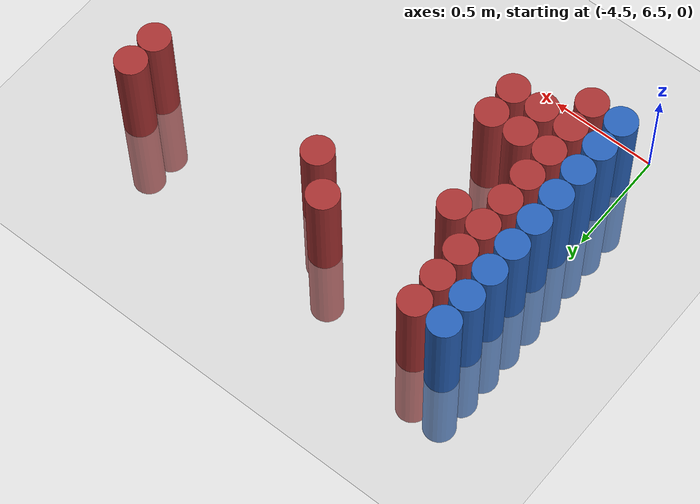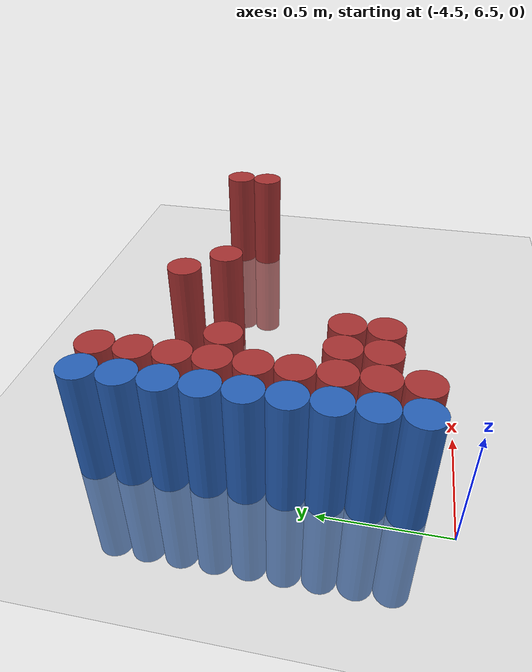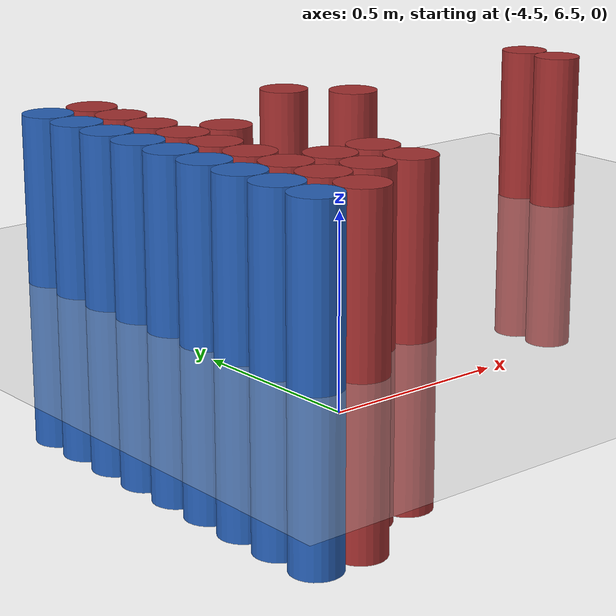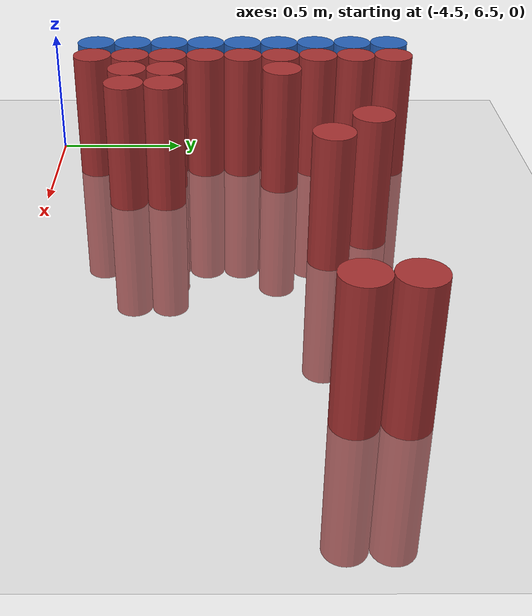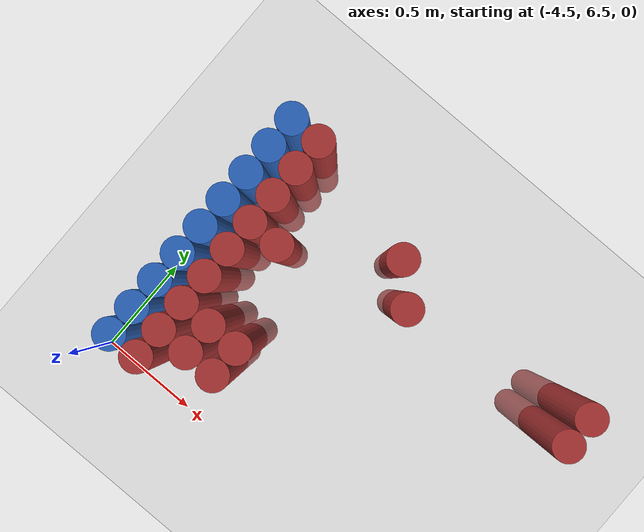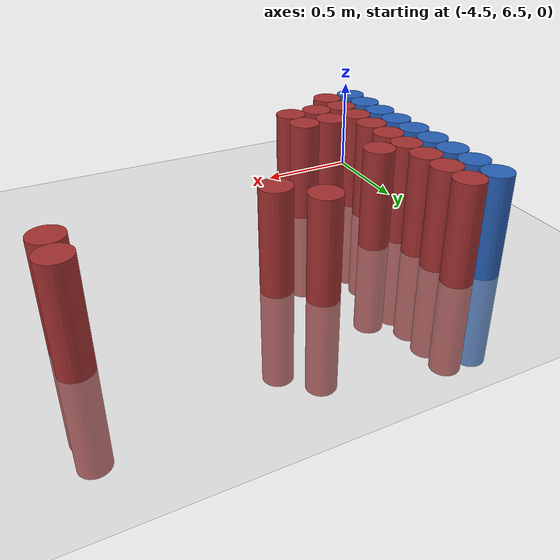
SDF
<sdf version="1.6">
 <world name="default">
  <model name="ground_plane">
   <static>1</static>
   <link name="link">
    <collision name="collision">
     <geometry><plane><normal>0 0 1</normal><size>100 100</size></plane></geometry>
     <surface><friction><ode><mu>100</mu><mu2>50</mu2></ode></friction></surface>
    </collision>
    <visual name="visual">
     <cast_shadows>0</cast_shadows>
     <geometry><plane><normal>0 0 1</normal><size>100 100</size></plane></geometry>
     <material>
      <script><uri>file://media/materials/scripts/gazebo.material</uri><name>Gazebo/Grey</name></script>
     </material>
    </visual>
   </link>
  </model>
  <model name="unit_cylinder_106">
   <static>1</static>
   <pose>-4.425000 6.675000 0.000000 0.000000 0.000000 0.000000</pose>
   <link name="link">
    <inertial>
     <mass>1</mass>
     <inertia><ixx>0.145833</ixx><ixy>0</ixy><ixz>0</ixz><iyy>0.145833</iyy><iyz>0</iyz><izz>0.125</izz></inertia>
    </inertial>
    <collision name="collision">
     <geometry><cylinder><radius>0.075000</radius><length>1</length></cylinder></geometry>
    </collision>
    <visual name="visual">
     <geometry><cylinder><radius>0.075000</radius><length>1</length></cylinder></geometry>
     <material>
      <ambient>0.152000 0.379000 0.720000 1</ambient>
      <diffuse>0.152000 0.379000 0.720000 1</diffuse>
     </material>
     <material>
      <script><name>Gazebo/Grey</name><uri>file://media/materials/scripts/gazebo.material</uri></script>
     </material>
    </visual>
   </link>
  </model>
  <model name="unit_cylinder_107">
   <static>1</static>
   <pose>-4.425000 6.825000 0.000000 0.000000 0.000000 0.000000</pose>
   <link name="link">
    <inertial>
     <mass>1</mass>
     <inertia><ixx>0.145833</ixx><ixy>0</ixy><ixz>0</ixz><iyy>0.145833</iyy><iyz>0</iyz><izz>0.125</izz></inertia>
    </inertial>
    <collision name="collision">
     <geometry><cylinder><radius>0.075000</radius><length>1</length></cylinder></geometry>
    </collision>
    <visual name="visual">
     <geometry><cylinder><radius>0.075000</radius><length>1</length></cylinder></geometry>
     <material>
      <ambient>0.152000 0.379000 0.720000 1</ambient>
      <diffuse>0.152000 0.379000 0.720000 1</diffuse>
     </material>
     <material>
      <script><name>Gazebo/Grey</name><uri>file://media/materials/scripts/gazebo.material</uri></script>
     </material>
    </visual>
   </link>
  </model>
  <model name="unit_cylinder_108">
   <static>1</static>
   <pose>-4.425000 6.975000 0.000000 0.000000 0.000000 0.000000</pose>
   <link name="link">
    <inertial>
     <mass>1</mass>
     <inertia><ixx>0.145833</ixx><ixy>0</ixy><ixz>0</ixz><iyy>0.145833</iyy><iyz>0</iyz><izz>0.125</izz></inertia>
    </inertial>
    <collision name="collision">
     <geometry><cylinder><radius>0.075000</radius><length>1</length></cylinder></geometry>
    </collision>
    <visual name="visual">
     <geometry><cylinder><radius>0.075000</radius><length>1</length></cylinder></geometry>
     <material>
      <ambient>0.152000 0.379000 0.720000 1</ambient>
      <diffuse>0.152000 0.379000 0.720000 1</diffuse>
     </material>
     <material>
      <script><name>Gazebo/Grey</name><uri>file://media/materials/scripts/gazebo.material</uri></script>
     </material>
    </visual>
   </link>
  </model>
  <model name="unit_cylinder_109">
   <static>1</static>
   <pose>-4.425000 7.125000 0.000000 0.000000 0.000000 0.000000</pose>
   <link name="link">
    <inertial>
     <mass>1</mass>
     <inertia><ixx>0.145833</ixx><ixy>0</ixy><ixz>0</ixz><iyy>0.145833</iyy><iyz>0</iyz><izz>0.125</izz></inertia>
    </inertial>
    <collision name="collision">
     <geometry><cylinder><radius>0.075000</radius><length>1</length></cylinder></geometry>
    </collision>
    <visual name="visual">
     <geometry><cylinder><radius>0.075000</radius><length>1</length></cylinder></geometry>
     <material>
      <ambient>0.152000 0.379000 0.720000 1</ambient>
      <diffuse>0.152000 0.379000 0.720000 1</diffuse>
     </material>
     <material>
      <script><name>Gazebo/Grey</name><uri>file://media/materials/scripts/gazebo.material</uri></script>
     </material>
    </visual>
   </link>
  </model>
  <model name="unit_cylinder_110">
   <static>1</static>
   <pose>-4.425000 7.275000 0.000000 0.000000 0.000000 0.000000</pose>
   <link name="link">
    <inertial>
     <mass>1</mass>
     <inertia><ixx>0.145833</ixx><ixy>0</ixy><ixz>0</ixz><iyy>0.145833</iyy><iyz>0</iyz><izz>0.125</izz></inertia>
    </inertial>
    <collision name="collision">
     <geometry><cylinder><radius>0.075000</radius><length>1</length></cylinder></geometry>
    </collision>
    <visual name="visual">
     <geometry><cylinder><radius>0.075000</radius><length>1</length></cylinder></geometry>
     <material>
      <ambient>0.152000 0.379000 0.720000 1</ambient>
      <diffuse>0.152000 0.379000 0.720000 1</diffuse>
     </material>
     <material>
      <script><name>Gazebo/Grey</name><uri>file://media/materials/scripts/gazebo.material</uri></script>
     </material>
    </visual>
   </link>
  </model>
  <model name="unit_cylinder_111">
   <static>1</static>
   <pose>-4.425000 7.425000 0.000000 0.000000 0.000000 0.000000</pose>
   <link name="link">
    <inertial>
     <mass>1</mass>
     <inertia><ixx>0.145833</ixx><ixy>0</ixy><ixz>0</ixz><iyy>0.145833</iyy><iyz>0</iyz><izz>0.125</izz></inertia>
    </inertial>
    <collision name="collision">
     <geometry><cylinder><radius>0.075000</radius><length>1</length></cylinder></geometry>
    </collision>
    <visual name="visual">
     <geometry><cylinder><radius>0.075000</radius><length>1</length></cylinder></geometry>
     <material>
      <ambient>0.152000 0.379000 0.720000 1</ambient>
      <diffuse>0.152000 0.379000 0.720000 1</diffuse>
     </material>
     <material>
      <script><name>Gazebo/Grey</name><uri>file://media/materials/scripts/gazebo.material</uri></script>
     </material>
    </visual>
   </link>
  </model>
  <model name="unit_cylinder_112">
   <static>1</static>
   <pose>-4.425000 7.575000 0.000000 0.000000 0.000000 0.000000</pose>
   <link name="link">
    <inertial>
     <mass>1</mass>
     <inertia><ixx>0.145833</ixx><ixy>0</ixy><ixz>0</ixz><iyy>0.145833</iyy><iyz>0</iyz><izz>0.125</izz></inertia>
    </inertial>
    <collision name="collision">
     <geometry><cylinder><radius>0.075000</radius><length>1</length></cylinder></geometry>
    </collision>
    <visual name="visual">
     <geometry><cylinder><radius>0.075000</radius><length>1</length></cylinder></geometry>
     <material>
      <ambient>0.152000 0.379000 0.720000 1</ambient>
      <diffuse>0.152000 0.379000 0.720000 1</diffuse>
     </material>
     <material>
      <script><name>Gazebo/Grey</name><uri>file://media/materials/scripts/gazebo.material</uri></script>
     </material>
    </visual>
   </link>
  </model>
  <model name="unit_cylinder_113">
   <static>1</static>
   <pose>-4.425000 7.725000 0.000000 0.000000 0.000000 0.000000</pose>
   <link name="link">
    <inertial>
     <mass>1</mass>
     <inertia><ixx>0.145833</ixx><ixy>0</ixy><ixz>0</ixz><iyy>0.145833</iyy><iyz>0</iyz><izz>0.125</izz></inertia>
    </inertial>
    <collision name="collision">
     <geometry><cylinder><radius>0.075000</radius><length>1</length></cylinder></geometry>
    </collision>
    <visual name="visual">
     <geometry><cylinder><radius>0.075000</radius><length>1</length></cylinder></geometry>
     <material>
      <ambient>0.152000 0.379000 0.720000 1</ambient>
      <diffuse>0.152000 0.379000 0.720000 1</diffuse>
     </material>
     <material>
      <script><name>Gazebo/Grey</name><uri>file://media/materials/scripts/gazebo.material</uri></script>
     </material>
    </visual>
   </link>
  </model>
  <model name="unit_cylinder_114">
   <static>1</static>
   <pose>-4.425000 7.875000 0.000000 0.000000 0.000000 0.000000</pose>
   <link name="link">
    <inertial>
     <mass>1</mass>
     <inertia><ixx>0.145833</ixx><ixy>0</ixy><ixz>0</ixz><iyy>0.145833</iyy><iyz>0</iyz><izz>0.125</izz></inertia>
    </inertial>
    <collision name="collision">
     <geometry><cylinder><radius>0.075000</radius><length>1</length></cylinder></geometry>
    </collision>
    <visual name="visual">
     <geometry><cylinder><radius>0.075000</radius><length>1</length></cylinder></geometry>
     <material>
      <ambient>0.152000 0.379000 0.720000 1</ambient>
      <diffuse>0.152000 0.379000 0.720000 1</diffuse>
     </material>
     <material>
      <script><name>Gazebo/Grey</name><uri>file://media/materials/scripts/gazebo.material</uri></script>
     </material>
    </visual>
   </link>
  </model>
  <model name="unit_cylinder_129">
   <static>1</static>
   <pose>-4.275000 6.675000 0.000000 0.000000 0.000000 0.000000</pose>
   <link name="link">
    <inertial>
     <mass>1</mass>
     <inertia><ixx>0.145833</ixx><ixy>0</ixy><ixz>0</ixz><iyy>0.145833</iyy><iyz>0</iyz><izz>0.125</izz></inertia>
    </inertial>
    <collision name="collision">
     <geometry><cylinder><radius>0.075000</radius><length>1</length></cylinder></geometry>
    </collision>
    <visual name="visual">
     <geometry><cylinder><radius>0.075000</radius><length>1</length></cylinder></geometry>
     <material>
      <ambient>0.648000 0.192000 0.192000 1</ambient>
      <diffuse>0.648000 0.192000 0.192000 1</diffuse>
     </material>
     <material>
      <script><name>Gazebo/Grey</name><uri>file://media/materials/scripts/gazebo.material</uri></script>
     </material>
    </visual>
   </link>
  </model>
  <model name="unit_cylinder_130">
   <static>1</static>
   <pose>-4.275000 6.825000 0.000000 0.000000 0.000000 0.000000</pose>
   <link name="link">
    <inertial>
     <mass>1</mass>
     <inertia><ixx>0.145833</ixx><ixy>0</ixy><ixz>0</ixz><iyy>0.145833</iyy><iyz>0</iyz><izz>0.125</izz></inertia>
    </inertial>
    <collision name="collision">
     <geometry><cylinder><radius>0.075000</radius><length>1</length></cylinder></geometry>
    </collision>
    <visual name="visual">
     <geometry><cylinder><radius>0.075000</radius><length>1</length></cylinder></geometry>
     <material>
      <ambient>0.648000 0.192000 0.192000 1</ambient>
      <diffuse>0.648000 0.192000 0.192000 1</diffuse>
     </material>
     <material>
      <script><name>Gazebo/Grey</name><uri>file://media/materials/scripts/gazebo.material</uri></script>
     </material>
    </visual>
   </link>
  </model>
  <model name="unit_cylinder_131">
   <static>1</static>
   <pose>-4.275000 6.975000 0.000000 0.000000 0.000000 0.000000</pose>
   <link name="link">
    <inertial>
     <mass>1</mass>
     <inertia><ixx>0.145833</ixx><ixy>0</ixy><ixz>0</ixz><iyy>0.145833</iyy><iyz>0</iyz><izz>0.125</izz></inertia>
    </inertial>
    <collision name="collision">
     <geometry><cylinder><radius>0.075000</radius><length>1</length></cylinder></geometry>
    </collision>
    <visual name="visual">
     <geometry><cylinder><radius>0.075000</radius><length>1</length></cylinder></geometry>
     <material>
      <ambient>0.648000 0.192000 0.192000 1</ambient>
      <diffuse>0.648000 0.192000 0.192000 1</diffuse>
     </material>
     <material>
      <script><name>Gazebo/Grey</name><uri>file://media/materials/scripts/gazebo.material</uri></script>
     </material>
    </visual>
   </link>
  </model>
  <model name="unit_cylinder_132">
   <static>1</static>
   <pose>-4.275000 7.125000 0.000000 0.000000 0.000000 0.000000</pose>
   <link name="link">
    <inertial>
     <mass>1</mass>
     <inertia><ixx>0.145833</ixx><ixy>0</ixy><ixz>0</ixz><iyy>0.145833</iyy><iyz>0</iyz><izz>0.125</izz></inertia>
    </inertial>
    <collision name="collision">
     <geometry><cylinder><radius>0.075000</radius><length>1</length></cylinder></geometry>
    </collision>
    <visual name="visual">
     <geometry><cylinder><radius>0.075000</radius><length>1</length></cylinder></geometry>
     <material>
      <ambient>0.648000 0.192000 0.192000 1</ambient>
      <diffuse>0.648000 0.192000 0.192000 1</diffuse>
     </material>
     <material>
      <script><name>Gazebo/Grey</name><uri>file://media/materials/scripts/gazebo.material</uri></script>
     </material>
    </visual>
   </link>
  </model>
  <model name="unit_cylinder_133">
   <static>1</static>
   <pose>-4.275000 7.275000 0.000000 0.000000 0.000000 0.000000</pose>
   <link name="link">
    <inertial>
     <mass>1</mass>
     <inertia><ixx>0.145833</ixx><ixy>0</ixy><ixz>0</ixz><iyy>0.145833</iyy><iyz>0</iyz><izz>0.125</izz></inertia>
    </inertial>
    <collision name="collision">
     <geometry><cylinder><radius>0.075000</radius><length>1</length></cylinder></geometry>
    </collision>
    <visual name="visual">
     <geometry><cylinder><radius>0.075000</radius><length>1</length></cylinder></geometry>
     <material>
      <ambient>0.648000 0.192000 0.192000 1</ambient>
      <diffuse>0.648000 0.192000 0.192000 1</diffuse>
     </material>
     <material>
      <script><name>Gazebo/Grey</name><uri>file://media/materials/scripts/gazebo.material</uri></script>
     </material>
    </visual>
   </link>
  </model>
  <model name="unit_cylinder_134">
   <static>1</static>
   <pose>-4.275000 7.425000 0.000000 0.000000 0.000000 0.000000</pose>
   <link name="link">
    <inertial>
     <mass>1</mass>
     <inertia><ixx>0.145833</ixx><ixy>0</ixy><ixz>0</ixz><iyy>0.145833</iyy><iyz>0</iyz><izz>0.125</izz></inertia>
    </inertial>
    <collision name="collision">
     <geometry><cylinder><radius>0.075000</radius><length>1</length></cylinder></geometry>
    </collision>
    <visual name="visual">
     <geometry><cylinder><radius>0.075000</radius><length>1</length></cylinder></geometry>
     <material>
      <ambient>0.648000 0.192000 0.192000 1</ambient>
      <diffuse>0.648000 0.192000 0.192000 1</diffuse>
     </material>
     <material>
      <script><name>Gazebo/Grey</name><uri>file://media/materials/scripts/gazebo.material</uri></script>
     </material>
    </visual>
   </link>
  </model>
  <model name="unit_cylinder_135">
   <static>1</static>
   <pose>-4.275000 7.575000 0.000000 0.000000 0.000000 0.000000</pose>
   <link name="link">
    <inertial>
     <mass>1</mass>
     <inertia><ixx>0.145833</ixx><ixy>0</ixy><ixz>0</ixz><iyy>0.145833</iyy><iyz>0</iyz><izz>0.125</izz></inertia>
    </inertial>
    <collision name="collision">
     <geometry><cylinder><radius>0.075000</radius><length>1</length></cylinder></geometry>
    </collision>
    <visual name="visual">
     <geometry><cylinder><radius>0.075000</radius><length>1</length></cylinder></geometry>
     <material>
      <ambient>0.648000 0.192000 0.192000 1</ambient>
      <diffuse>0.648000 0.192000 0.192000 1</diffuse>
     </material>
     <material>
      <script><name>Gazebo/Grey</name><uri>file://media/materials/scripts/gazebo.material</uri></script>
     </material>
    </visual>
   </link>
  </model>
  <model name="unit_cylinder_136">
   <static>1</static>
   <pose>-4.275000 7.725000 0.000000 0.000000 0.000000 0.000000</pose>
   <link name="link">
    <inertial>
     <mass>1</mass>
     <inertia><ixx>0.145833</ixx><ixy>0</ixy><ixz>0</ixz><iyy>0.145833</iyy><iyz>0</iyz><izz>0.125</izz></inertia>
    </inertial>
    <collision name="collision">
     <geometry><cylinder><radius>0.075000</radius><length>1</length></cylinder></geometry>
    </collision>
    <visual name="visual">
     <geometry><cylinder><radius>0.075000</radius><length>1</length></cylinder></geometry>
     <material>
      <ambient>0.648000 0.192000 0.192000 1</ambient>
      <diffuse>0.648000 0.192000 0.192000 1</diffuse>
     </material>
     <material>
      <script><name>Gazebo/Grey</name><uri>file://media/materials/scripts/gazebo.material</uri></script>
     </material>
    </visual>
   </link>
  </model>
  <model name="unit_cylinder_137">
   <static>1</static>
   <pose>-4.275000 7.875000 0.000000 0.000000 0.000000 0.000000</pose>
   <link name="link">
    <inertial>
     <mass>1</mass>
     <inertia><ixx>0.145833</ixx><ixy>0</ixy><ixz>0</ixz><iyy>0.145833</iyy><iyz>0</iyz><izz>0.125</izz></inertia>
    </inertial>
    <collision name="collision">
     <geometry><cylinder><radius>0.075000</radius><length>1</length></cylinder></geometry>
    </collision>
    <visual name="visual">
     <geometry><cylinder><radius>0.075000</radius><length>1</length></cylinder></geometry>
     <material>
      <ambient>0.648000 0.192000 0.192000 1</ambient>
      <diffuse>0.648000 0.192000 0.192000 1</diffuse>
     </material>
     <material>
      <script><name>Gazebo/Grey</name><uri>file://media/materials/scripts/gazebo.material</uri></script>
     </material>
    </visual>
   </link>
  </model>
  <model name="unit_cylinder_144">
   <static>1</static>
   <pose>-4.125000 6.825000 0.000000 0.000000 0.000000 0.000000</pose>
   <link name="link">
    <inertial>
     <mass>1</mass>
     <inertia><ixx>0.145833</ixx><ixy>0</ixy><ixz>0</ixz><iyy>0.145833</iyy><iyz>0</iyz><izz>0.125</izz></inertia>
    </inertial>
    <collision name="collision">
     <geometry><cylinder><radius>0.075000</radius><length>1</length></cylinder></geometry>
    </collision>
    <visual name="visual">
     <geometry><cylinder><radius>0.075000</radius><length>1</length></cylinder></geometry>
     <material>
      <ambient>0.648000 0.192000 0.192000 1</ambient>
      <diffuse>0.648000 0.192000 0.192000 1</diffuse>
     </material>
     <material>
      <script><name>Gazebo/Grey</name><uri>file://media/materials/scripts/gazebo.material</uri></script>
     </material>
    </visual>
   </link>
  </model>
  <model name="unit_cylinder_145">
   <static>1</static>
   <pose>-4.125000 6.975000 0.000000 0.000000 0.000000 0.000000</pose>
   <link name="link">
    <inertial>
     <mass>1</mass>
     <inertia><ixx>0.145833</ixx><ixy>0</ixy><ixz>0</ixz><iyy>0.145833</iyy><iyz>0</iyz><izz>0.125</izz></inertia>
    </inertial>
    <collision name="collision">
     <geometry><cylinder><radius>0.075000</radius><length>1</length></cylinder></geometry>
    </collision>
    <visual name="visual">
     <geometry><cylinder><radius>0.075000</radius><length>1</length></cylinder></geometry>
     <material>
      <ambient>0.648000 0.192000 0.192000 1</ambient>
      <diffuse>0.648000 0.192000 0.192000 1</diffuse>
     </material>
     <material>
      <script><name>Gazebo/Grey</name><uri>file://media/materials/scripts/gazebo.material</uri></script>
     </material>
    </visual>
   </link>
  </model>
  <model name="unit_cylinder_146">
   <static>1</static>
   <pose>-4.125000 7.425000 0.000000 0.000000 0.000000 0.000000</pose>
   <link name="link">
    <inertial>
     <mass>1</mass>
     <inertia><ixx>0.145833</ixx><ixy>0</ixy><ixz>0</ixz><iyy>0.145833</iyy><iyz>0</iyz><izz>0.125</izz></inertia>
    </inertial>
    <collision name="collision">
     <geometry><cylinder><radius>0.075000</radius><length>1</length></cylinder></geometry>
    </collision>
    <visual name="visual">
     <geometry><cylinder><radius>0.075000</radius><length>1</length></cylinder></geometry>
     <material>
      <ambient>0.648000 0.192000 0.192000 1</ambient>
      <diffuse>0.648000 0.192000 0.192000 1</diffuse>
     </material>
     <material>
      <script><name>Gazebo/Grey</name><uri>file://media/materials/scripts/gazebo.material</uri></script>
     </material>
    </visual>
   </link>
  </model>
  <model name="unit_cylinder_150">
   <static>1</static>
   <pose>-3.975000 6.825000 0.000000 0.000000 0.000000 0.000000</pose>
   <link name="link">
    <inertial>
     <mass>1</mass>
     <inertia><ixx>0.145833</ixx><ixy>0</ixy><ixz>0</ixz><iyy>0.145833</iyy><iyz>0</iyz><izz>0.125</izz></inertia>
    </inertial>
    <collision name="collision">
     <geometry><cylinder><radius>0.075000</radius><length>1</length></cylinder></geometry>
    </collision>
    <visual name="visual">
     <geometry><cylinder><radius>0.075000</radius><length>1</length></cylinder></geometry>
     <material>
      <ambient>0.648000 0.192000 0.192000 1</ambient>
      <diffuse>0.648000 0.192000 0.192000 1</diffuse>
     </material>
     <material>
      <script><name>Gazebo/Grey</name><uri>file://media/materials/scripts/gazebo.material</uri></script>
     </material>
    </visual>
   </link>
  </model>
  <model name="unit_cylinder_151">
   <static>1</static>
   <pose>-3.975000 6.975000 0.000000 0.000000 0.000000 0.000000</pose>
   <link name="link">
    <inertial>
     <mass>1</mass>
     <inertia><ixx>0.145833</ixx><ixy>0</ixy><ixz>0</ixz><iyy>0.145833</iyy><iyz>0</iyz><izz>0.125</izz></inertia>
    </inertial>
    <collision name="collision">
     <geometry><cylinder><radius>0.075000</radius><length>1</length></cylinder></geometry>
    </collision>
    <visual name="visual">
     <geometry><cylinder><radius>0.075000</radius><length>1</length></cylinder></geometry>
     <material>
      <ambient>0.648000 0.192000 0.192000 1</ambient>
      <diffuse>0.648000 0.192000 0.192000 1</diffuse>
     </material>
     <material>
      <script><name>Gazebo/Grey</name><uri>file://media/materials/scripts/gazebo.material</uri></script>
     </material>
    </visual>
   </link>
  </model>
  <model name="unit_cylinder_155">
   <static>1</static>
   <pose>-3.675000 7.725000 0.000000 0.000000 0.000000 0.000000</pose>
   <link name="link">
    <inertial>
     <mass>1</mass>
     <inertia><ixx>0.145833</ixx><ixy>0</ixy><ixz>0</ixz><iyy>0.145833</iyy><iyz>0</iyz><izz>0.125</izz></inertia>
    </inertial>
    <collision name="collision">
     <geometry><cylinder><radius>0.075000</radius><length>1</length></cylinder></geometry>
    </collision>
    <visual name="visual">
     <geometry><cylinder><radius>0.075000</radius><length>1</length></cylinder></geometry>
     <material>
      <ambient>0.648000 0.192000 0.192000 1</ambient>
      <diffuse>0.648000 0.192000 0.192000 1</diffuse>
     </material>
     <material>
      <script><name>Gazebo/Grey</name><uri>file://media/materials/scripts/gazebo.material</uri></script>
     </material>
    </visual>
   </link>
  </model>
  <model name="unit_cylinder_159">
   <static>1</static>
   <pose>-3.525000 7.575000 0.000000 0.000000 0.000000 0.000000</pose>
   <link name="link">
    <inertial>
     <mass>1</mass>
     <inertia><ixx>0.145833</ixx><ixy>0</ixy><ixz>0</ixz><iyy>0.145833</iyy><iyz>0</iyz><izz>0.125</izz></inertia>
    </inertial>
    <collision name="collision">
     <geometry><cylinder><radius>0.075000</radius><length>1</length></cylinder></geometry>
    </collision>
    <visual name="visual">
     <geometry><cylinder><radius>0.075000</radius><length>1</length></cylinder></geometry>
     <material>
      <ambient>0.648000 0.192000 0.192000 1</ambient>
      <diffuse>0.648000 0.192000 0.192000 1</diffuse>
     </material>
     <material>
      <script><name>Gazebo/Grey</name><uri>file://media/materials/scripts/gazebo.material</uri></script>
     </material>
    </visual>
   </link>
  </model>
  <model name="unit_cylinder_170">
   <static>1</static>
   <pose>-2.625000 7.575000 0.000000 0.000000 0.000000 0.000000</pose>
   <link name="link">
    <inertial>
     <mass>1</mass>
     <inertia><ixx>0.145833</ixx><ixy>0</ixy><ixz>0</ixz><iyy>0.145833</iyy><iyz>0</iyz><izz>0.125</izz></inertia>
    </inertial>
    <collision name="collision">
     <geometry><cylinder><radius>0.075000</radius><length>1</length></cylinder></geometry>
    </collision>
    <visual name="visual">
     <geometry><cylinder><radius>0.075000</radius><length>1</length></cylinder></geometry>
     <material>
      <ambient>0.648000 0.192000 0.192000 1</ambient>
      <diffuse>0.648000 0.192000 0.192000 1</diffuse>
     </material>
     <material>
      <script><name>Gazebo/Grey</name><uri>file://media/materials/scripts/gazebo.material</uri></script>
     </material>
    </visual>
   </link>
  </model>
  <model name="unit_cylinder_171">
   <static>1</static>
   <pose>-2.625000 7.725000 0.000000 0.000000 0.000000 0.000000</pose>
   <link name="link">
    <inertial>
     <mass>1</mass>
     <inertia><ixx>0.145833</ixx><ixy>0</ixy><ixz>0</ixz><iyy>0.145833</iyy><iyz>0</iyz><izz>0.125</izz></inertia>
    </inertial>
    <collision name="collision">
     <geometry><cylinder><radius>0.075000</radius><length>1</length></cylinder></geometry>
    </collision>
    <visual name="visual">
     <geometry><cylinder><radius>0.075000</radius><length>1</length></cylinder></geometry>
     <material>
      <ambient>0.648000 0.192000 0.192000 1</ambient>
      <diffuse>0.648000 0.192000 0.192000 1</diffuse>
     </material>
     <material>
      <script><name>Gazebo/Grey</name><uri>file://media/materials/scripts/gazebo.material</uri></script>
     </material>
    </visual>
   </link>
  </model>
 </world>
</sdf>
